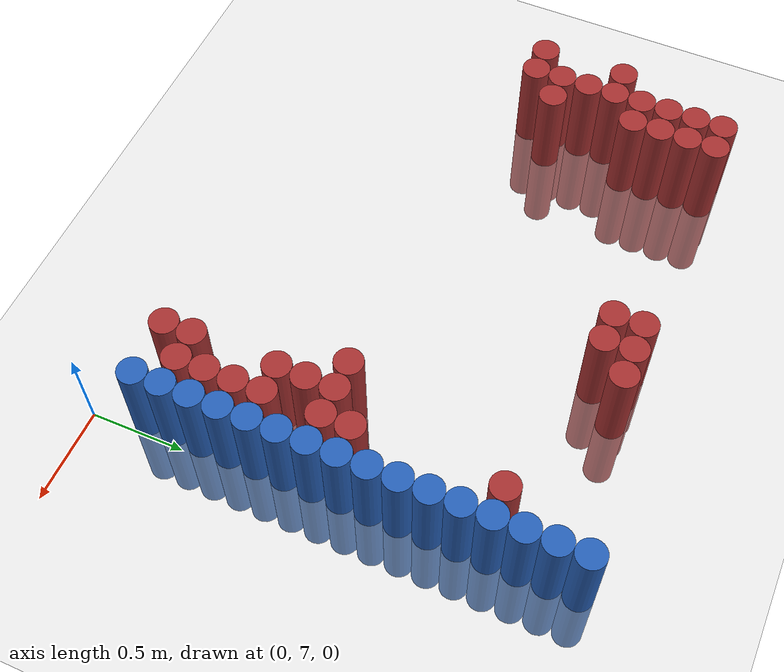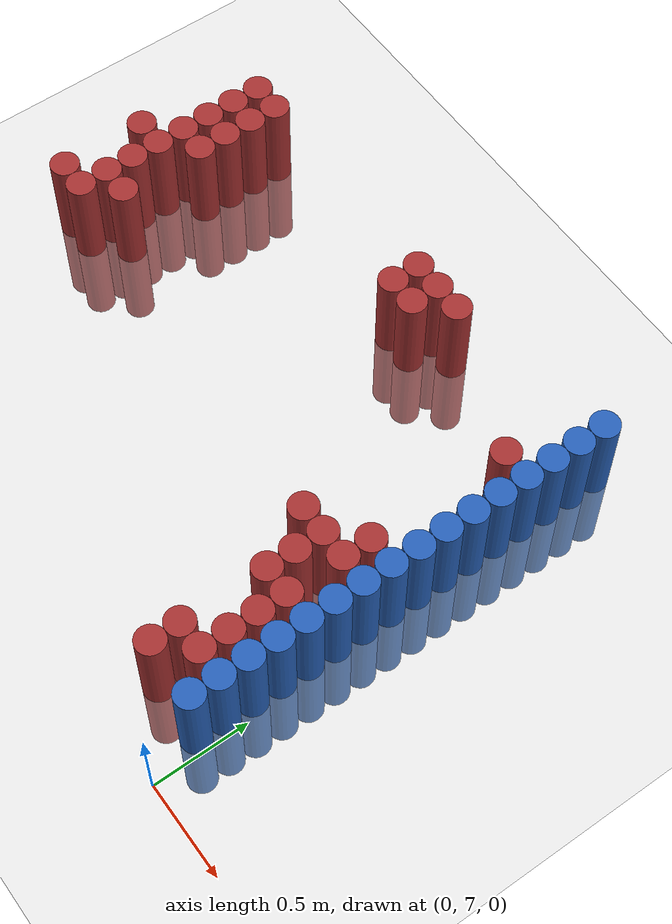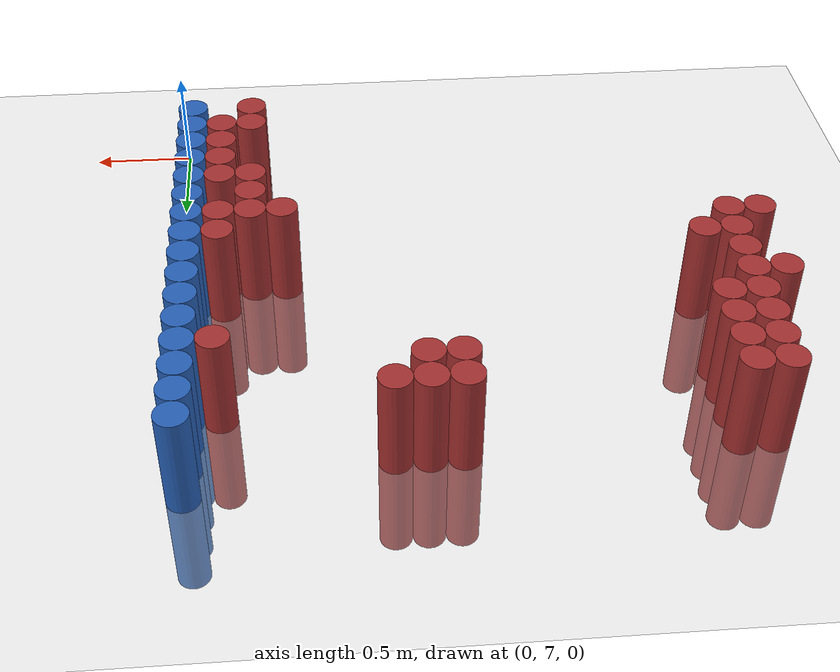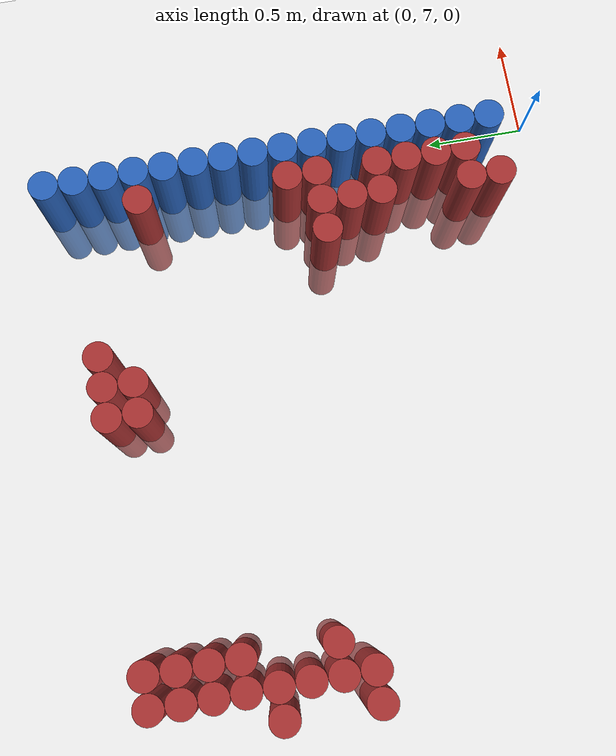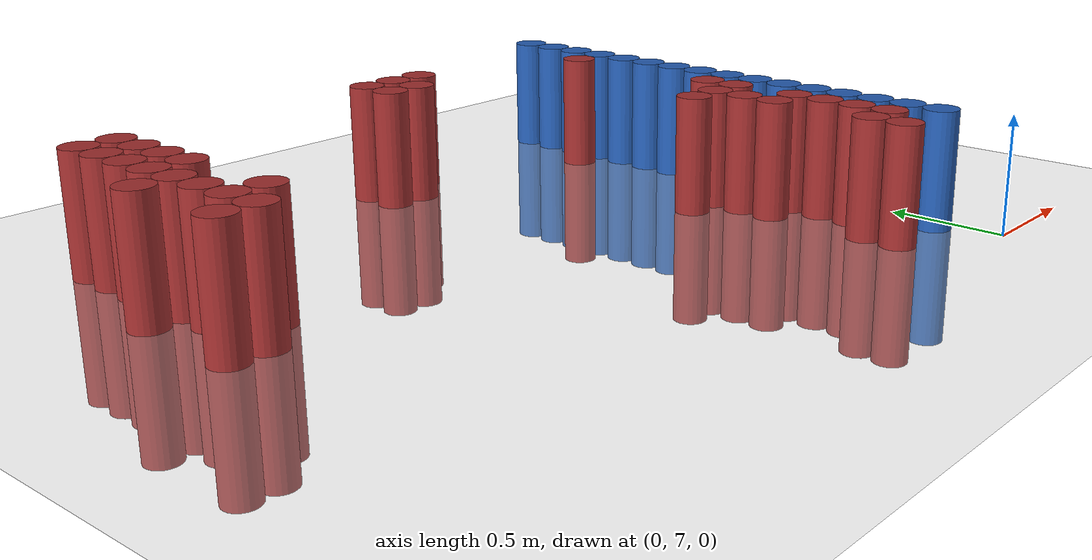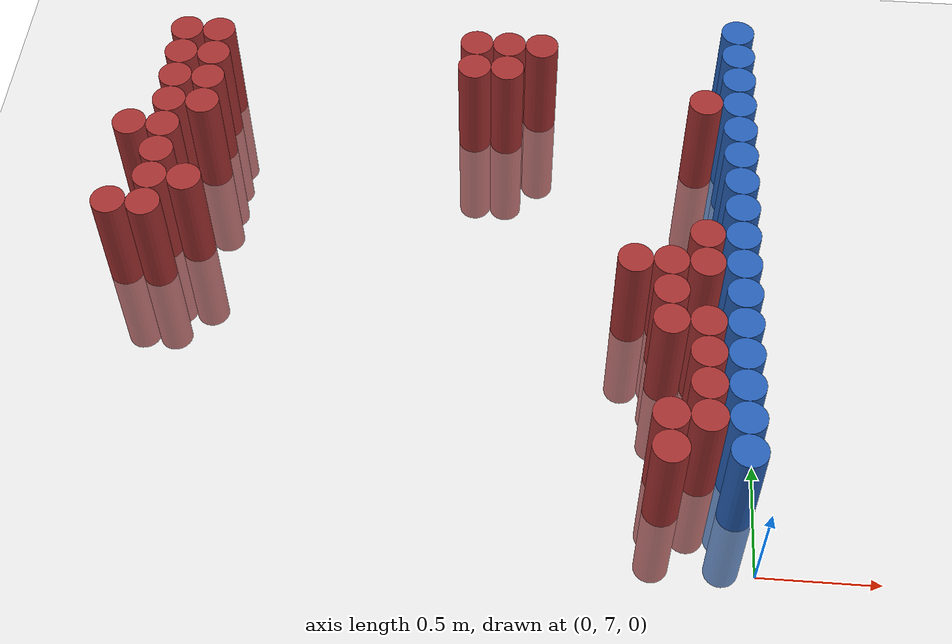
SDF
<sdf version="1.6">
 <world name="default">
  <model name="ground_plane">
   <static>1</static>
   <link name="link">
    <collision name="collision">
     <geometry><plane><normal>0 0 1</normal><size>100 100</size></plane></geometry>
     <surface><friction><ode><mu>100</mu><mu2>50</mu2></ode></friction></surface>
    </collision>
    <visual name="visual">
     <cast_shadows>0</cast_shadows>
     <geometry><plane><normal>0 0 1</normal><size>100 100</size></plane></geometry>
     <material>
      <script><uri>file://media/materials/scripts/gazebo.material</uri><name>Gazebo/Grey</name></script>
     </material>
    </visual>
   </link>
  </model>
  <model name="unit_cylinder_211">
   <static>1</static>
   <pose>-2.775000 8.325000 0.000000 0.000000 0.000000 0.000000</pose>
   <link name="link">
    <inertial>
     <mass>1</mass>
     <inertia><ixx>0.145833</ixx><ixy>0</ixy><ixz>0</ixz><iyy>0.145833</iyy><iyz>0</iyz><izz>0.125</izz></inertia>
    </inertial>
    <collision name="collision">
     <geometry><cylinder><radius>0.075000</radius><length>1</length></cylinder></geometry>
    </collision>
    <visual name="visual">
     <geometry><cylinder><radius>0.075000</radius><length>1</length></cylinder></geometry>
     <material>
      <ambient>0.648000 0.192000 0.192000 1</ambient>
      <diffuse>0.648000 0.192000 0.192000 1</diffuse>
     </material>
     <material>
      <script><name>Gazebo/Grey</name><uri>file://media/materials/scripts/gazebo.material</uri></script>
     </material>
    </visual>
   </link>
  </model>
  <model name="unit_cylinder_212">
   <static>1</static>
   <pose>-2.775000 8.775000 0.000000 0.000000 0.000000 0.000000</pose>
   <link name="link">
    <inertial>
     <mass>1</mass>
     <inertia><ixx>0.145833</ixx><ixy>0</ixy><ixz>0</ixz><iyy>0.145833</iyy><iyz>0</iyz><izz>0.125</izz></inertia>
    </inertial>
    <collision name="collision">
     <geometry><cylinder><radius>0.075000</radius><length>1</length></cylinder></geometry>
    </collision>
    <visual name="visual">
     <geometry><cylinder><radius>0.075000</radius><length>1</length></cylinder></geometry>
     <material>
      <ambient>0.648000 0.192000 0.192000 1</ambient>
      <diffuse>0.648000 0.192000 0.192000 1</diffuse>
     </material>
     <material>
      <script><name>Gazebo/Grey</name><uri>file://media/materials/scripts/gazebo.material</uri></script>
     </material>
    </visual>
   </link>
  </model>
  <model name="unit_cylinder_218">
   <static>1</static>
   <pose>-2.625000 8.325000 0.000000 0.000000 0.000000 0.000000</pose>
   <link name="link">
    <inertial>
     <mass>1</mass>
     <inertia><ixx>0.145833</ixx><ixy>0</ixy><ixz>0</ixz><iyy>0.145833</iyy><iyz>0</iyz><izz>0.125</izz></inertia>
    </inertial>
    <collision name="collision">
     <geometry><cylinder><radius>0.075000</radius><length>1</length></cylinder></geometry>
    </collision>
    <visual name="visual">
     <geometry><cylinder><radius>0.075000</radius><length>1</length></cylinder></geometry>
     <material>
      <ambient>0.648000 0.192000 0.192000 1</ambient>
      <diffuse>0.648000 0.192000 0.192000 1</diffuse>
     </material>
     <material>
      <script><name>Gazebo/Grey</name><uri>file://media/materials/scripts/gazebo.material</uri></script>
     </material>
    </visual>
   </link>
  </model>
  <model name="unit_cylinder_219">
   <static>1</static>
   <pose>-2.625000 8.475000 0.000000 0.000000 0.000000 0.000000</pose>
   <link name="link">
    <inertial>
     <mass>1</mass>
     <inertia><ixx>0.145833</ixx><ixy>0</ixy><ixz>0</ixz><iyy>0.145833</iyy><iyz>0</iyz><izz>0.125</izz></inertia>
    </inertial>
    <collision name="collision">
     <geometry><cylinder><radius>0.075000</radius><length>1</length></cylinder></geometry>
    </collision>
    <visual name="visual">
     <geometry><cylinder><radius>0.075000</radius><length>1</length></cylinder></geometry>
     <material>
      <ambient>0.648000 0.192000 0.192000 1</ambient>
      <diffuse>0.648000 0.192000 0.192000 1</diffuse>
     </material>
     <material>
      <script><name>Gazebo/Grey</name><uri>file://media/materials/scripts/gazebo.material</uri></script>
     </material>
    </visual>
   </link>
  </model>
  <model name="unit_cylinder_220">
   <static>1</static>
   <pose>-2.625000 8.625000 0.000000 0.000000 0.000000 0.000000</pose>
   <link name="link">
    <inertial>
     <mass>1</mass>
     <inertia><ixx>0.145833</ixx><ixy>0</ixy><ixz>0</ixz><iyy>0.145833</iyy><iyz>0</iyz><izz>0.125</izz></inertia>
    </inertial>
    <collision name="collision">
     <geometry><cylinder><radius>0.075000</radius><length>1</length></cylinder></geometry>
    </collision>
    <visual name="visual">
     <geometry><cylinder><radius>0.075000</radius><length>1</length></cylinder></geometry>
     <material>
      <ambient>0.648000 0.192000 0.192000 1</ambient>
      <diffuse>0.648000 0.192000 0.192000 1</diffuse>
     </material>
     <material>
      <script><name>Gazebo/Grey</name><uri>file://media/materials/scripts/gazebo.material</uri></script>
     </material>
    </visual>
   </link>
  </model>
  <model name="unit_cylinder_221">
   <static>1</static>
   <pose>-2.625000 8.775000 0.000000 0.000000 0.000000 0.000000</pose>
   <link name="link">
    <inertial>
     <mass>1</mass>
     <inertia><ixx>0.145833</ixx><ixy>0</ixy><ixz>0</ixz><iyy>0.145833</iyy><iyz>0</iyz><izz>0.125</izz></inertia>
    </inertial>
    <collision name="collision">
     <geometry><cylinder><radius>0.075000</radius><length>1</length></cylinder></geometry>
    </collision>
    <visual name="visual">
     <geometry><cylinder><radius>0.075000</radius><length>1</length></cylinder></geometry>
     <material>
      <ambient>0.648000 0.192000 0.192000 1</ambient>
      <diffuse>0.648000 0.192000 0.192000 1</diffuse>
     </material>
     <material>
      <script><name>Gazebo/Grey</name><uri>file://media/materials/scripts/gazebo.material</uri></script>
     </material>
    </visual>
   </link>
  </model>
  <model name="unit_cylinder_222">
   <static>1</static>
   <pose>-2.625000 8.925000 0.000000 0.000000 0.000000 0.000000</pose>
   <link name="link">
    <inertial>
     <mass>1</mass>
     <inertia><ixx>0.145833</ixx><ixy>0</ixy><ixz>0</ixz><iyy>0.145833</iyy><iyz>0</iyz><izz>0.125</izz></inertia>
    </inertial>
    <collision name="collision">
     <geometry><cylinder><radius>0.075000</radius><length>1</length></cylinder></geometry>
    </collision>
    <visual name="visual">
     <geometry><cylinder><radius>0.075000</radius><length>1</length></cylinder></geometry>
     <material>
      <ambient>0.648000 0.192000 0.192000 1</ambient>
      <diffuse>0.648000 0.192000 0.192000 1</diffuse>
     </material>
     <material>
      <script><name>Gazebo/Grey</name><uri>file://media/materials/scripts/gazebo.material</uri></script>
     </material>
    </visual>
   </link>
  </model>
  <model name="unit_cylinder_223">
   <static>1</static>
   <pose>-2.625000 9.075000 0.000000 0.000000 0.000000 0.000000</pose>
   <link name="link">
    <inertial>
     <mass>1</mass>
     <inertia><ixx>0.145833</ixx><ixy>0</ixy><ixz>0</ixz><iyy>0.145833</iyy><iyz>0</iyz><izz>0.125</izz></inertia>
    </inertial>
    <collision name="collision">
     <geometry><cylinder><radius>0.075000</radius><length>1</length></cylinder></geometry>
    </collision>
    <visual name="visual">
     <geometry><cylinder><radius>0.075000</radius><length>1</length></cylinder></geometry>
     <material>
      <ambient>0.648000 0.192000 0.192000 1</ambient>
      <diffuse>0.648000 0.192000 0.192000 1</diffuse>
     </material>
     <material>
      <script><name>Gazebo/Grey</name><uri>file://media/materials/scripts/gazebo.material</uri></script>
     </material>
    </visual>
   </link>
  </model>
  <model name="unit_cylinder_224">
   <static>1</static>
   <pose>-2.625000 9.225000 0.000000 0.000000 0.000000 0.000000</pose>
   <link name="link">
    <inertial>
     <mass>1</mass>
     <inertia><ixx>0.145833</ixx><ixy>0</ixy><ixz>0</ixz><iyy>0.145833</iyy><iyz>0</iyz><izz>0.125</izz></inertia>
    </inertial>
    <collision name="collision">
     <geometry><cylinder><radius>0.075000</radius><length>1</length></cylinder></geometry>
    </collision>
    <visual name="visual">
     <geometry><cylinder><radius>0.075000</radius><length>1</length></cylinder></geometry>
     <material>
      <ambient>0.648000 0.192000 0.192000 1</ambient>
      <diffuse>0.648000 0.192000 0.192000 1</diffuse>
     </material>
     <material>
      <script><name>Gazebo/Grey</name><uri>file://media/materials/scripts/gazebo.material</uri></script>
     </material>
    </visual>
   </link>
  </model>
  <model name="unit_cylinder_225">
   <static>1</static>
   <pose>-2.625000 9.375000 0.000000 0.000000 0.000000 0.000000</pose>
   <link name="link">
    <inertial>
     <mass>1</mass>
     <inertia><ixx>0.145833</ixx><ixy>0</ixy><ixz>0</ixz><iyy>0.145833</iyy><iyz>0</iyz><izz>0.125</izz></inertia>
    </inertial>
    <collision name="collision">
     <geometry><cylinder><radius>0.075000</radius><length>1</length></cylinder></geometry>
    </collision>
    <visual name="visual">
     <geometry><cylinder><radius>0.075000</radius><length>1</length></cylinder></geometry>
     <material>
      <ambient>0.648000 0.192000 0.192000 1</ambient>
      <diffuse>0.648000 0.192000 0.192000 1</diffuse>
     </material>
     <material>
      <script><name>Gazebo/Grey</name><uri>file://media/materials/scripts/gazebo.material</uri></script>
     </material>
    </visual>
   </link>
  </model>
  <model name="unit_cylinder_233">
   <static>1</static>
   <pose>-2.475000 8.475000 0.000000 0.000000 0.000000 0.000000</pose>
   <link name="link">
    <inertial>
     <mass>1</mass>
     <inertia><ixx>0.145833</ixx><ixy>0</ixy><ixz>0</ixz><iyy>0.145833</iyy><iyz>0</iyz><izz>0.125</izz></inertia>
    </inertial>
    <collision name="collision">
     <geometry><cylinder><radius>0.075000</radius><length>1</length></cylinder></geometry>
    </collision>
    <visual name="visual">
     <geometry><cylinder><radius>0.075000</radius><length>1</length></cylinder></geometry>
     <material>
      <ambient>0.648000 0.192000 0.192000 1</ambient>
      <diffuse>0.648000 0.192000 0.192000 1</diffuse>
     </material>
     <material>
      <script><name>Gazebo/Grey</name><uri>file://media/materials/scripts/gazebo.material</uri></script>
     </material>
    </visual>
   </link>
  </model>
  <model name="unit_cylinder_234">
   <static>1</static>
   <pose>-2.475000 8.925000 0.000000 0.000000 0.000000 0.000000</pose>
   <link name="link">
    <inertial>
     <mass>1</mass>
     <inertia><ixx>0.145833</ixx><ixy>0</ixy><ixz>0</ixz><iyy>0.145833</iyy><iyz>0</iyz><izz>0.125</izz></inertia>
    </inertial>
    <collision name="collision">
     <geometry><cylinder><radius>0.075000</radius><length>1</length></cylinder></geometry>
    </collision>
    <visual name="visual">
     <geometry><cylinder><radius>0.075000</radius><length>1</length></cylinder></geometry>
     <material>
      <ambient>0.648000 0.192000 0.192000 1</ambient>
      <diffuse>0.648000 0.192000 0.192000 1</diffuse>
     </material>
     <material>
      <script><name>Gazebo/Grey</name><uri>file://media/materials/scripts/gazebo.material</uri></script>
     </material>
    </visual>
   </link>
  </model>
  <model name="unit_cylinder_235">
   <static>1</static>
   <pose>-2.475000 9.075000 0.000000 0.000000 0.000000 0.000000</pose>
   <link name="link">
    <inertial>
     <mass>1</mass>
     <inertia><ixx>0.145833</ixx><ixy>0</ixy><ixz>0</ixz><iyy>0.145833</iyy><iyz>0</iyz><izz>0.125</izz></inertia>
    </inertial>
    <collision name="collision">
     <geometry><cylinder><radius>0.075000</radius><length>1</length></cylinder></geometry>
    </collision>
    <visual name="visual">
     <geometry><cylinder><radius>0.075000</radius><length>1</length></cylinder></geometry>
     <material>
      <ambient>0.648000 0.192000 0.192000 1</ambient>
      <diffuse>0.648000 0.192000 0.192000 1</diffuse>
     </material>
     <material>
      <script><name>Gazebo/Grey</name><uri>file://media/materials/scripts/gazebo.material</uri></script>
     </material>
    </visual>
   </link>
  </model>
  <model name="unit_cylinder_236">
   <static>1</static>
   <pose>-2.475000 9.225000 0.000000 0.000000 0.000000 0.000000</pose>
   <link name="link">
    <inertial>
     <mass>1</mass>
     <inertia><ixx>0.145833</ixx><ixy>0</ixy><ixz>0</ixz><iyy>0.145833</iyy><iyz>0</iyz><izz>0.125</izz></inertia>
    </inertial>
    <collision name="collision">
     <geometry><cylinder><radius>0.075000</radius><length>1</length></cylinder></geometry>
    </collision>
    <visual name="visual">
     <geometry><cylinder><radius>0.075000</radius><length>1</length></cylinder></geometry>
     <material>
      <ambient>0.648000 0.192000 0.192000 1</ambient>
      <diffuse>0.648000 0.192000 0.192000 1</diffuse>
     </material>
     <material>
      <script><name>Gazebo/Grey</name><uri>file://media/materials/scripts/gazebo.material</uri></script>
     </material>
    </visual>
   </link>
  </model>
  <model name="unit_cylinder_237">
   <static>1</static>
   <pose>-2.475000 9.375000 0.000000 0.000000 0.000000 0.000000</pose>
   <link name="link">
    <inertial>
     <mass>1</mass>
     <inertia><ixx>0.145833</ixx><ixy>0</ixy><ixz>0</ixz><iyy>0.145833</iyy><iyz>0</iyz><izz>0.125</izz></inertia>
    </inertial>
    <collision name="collision">
     <geometry><cylinder><radius>0.075000</radius><length>1</length></cylinder></geometry>
    </collision>
    <visual name="visual">
     <geometry><cylinder><radius>0.075000</radius><length>1</length></cylinder></geometry>
     <material>
      <ambient>0.648000 0.192000 0.192000 1</ambient>
      <diffuse>0.648000 0.192000 0.192000 1</diffuse>
     </material>
     <material>
      <script><name>Gazebo/Grey</name><uri>file://media/materials/scripts/gazebo.material</uri></script>
     </material>
    </visual>
   </link>
  </model>
  <model name="unit_cylinder_271">
   <static>1</static>
   <pose>-1.275000 9.225000 0.000000 0.000000 0.000000 0.000000</pose>
   <link name="link">
    <inertial>
     <mass>1</mass>
     <inertia><ixx>0.145833</ixx><ixy>0</ixy><ixz>0</ixz><iyy>0.145833</iyy><iyz>0</iyz><izz>0.125</izz></inertia>
    </inertial>
    <collision name="collision">
     <geometry><cylinder><radius>0.075000</radius><length>1</length></cylinder></geometry>
    </collision>
    <visual name="visual">
     <geometry><cylinder><radius>0.075000</radius><length>1</length></cylinder></geometry>
     <material>
      <ambient>0.648000 0.192000 0.192000 1</ambient>
      <diffuse>0.648000 0.192000 0.192000 1</diffuse>
     </material>
     <material>
      <script><name>Gazebo/Grey</name><uri>file://media/materials/scripts/gazebo.material</uri></script>
     </material>
    </visual>
   </link>
  </model>
  <model name="unit_cylinder_272">
   <static>1</static>
   <pose>-1.275000 9.375000 0.000000 0.000000 0.000000 0.000000</pose>
   <link name="link">
    <inertial>
     <mass>1</mass>
     <inertia><ixx>0.145833</ixx><ixy>0</ixy><ixz>0</ixz><iyy>0.145833</iyy><iyz>0</iyz><izz>0.125</izz></inertia>
    </inertial>
    <collision name="collision">
     <geometry><cylinder><radius>0.075000</radius><length>1</length></cylinder></geometry>
    </collision>
    <visual name="visual">
     <geometry><cylinder><radius>0.075000</radius><length>1</length></cylinder></geometry>
     <material>
      <ambient>0.648000 0.192000 0.192000 1</ambient>
      <diffuse>0.648000 0.192000 0.192000 1</diffuse>
     </material>
     <material>
      <script><name>Gazebo/Grey</name><uri>file://media/materials/scripts/gazebo.material</uri></script>
     </material>
    </visual>
   </link>
  </model>
  <model name="unit_cylinder_273">
   <static>1</static>
   <pose>-1.125000 9.225000 0.000000 0.000000 0.000000 0.000000</pose>
   <link name="link">
    <inertial>
     <mass>1</mass>
     <inertia><ixx>0.145833</ixx><ixy>0</ixy><ixz>0</ixz><iyy>0.145833</iyy><iyz>0</iyz><izz>0.125</izz></inertia>
    </inertial>
    <collision name="collision">
     <geometry><cylinder><radius>0.075000</radius><length>1</length></cylinder></geometry>
    </collision>
    <visual name="visual">
     <geometry><cylinder><radius>0.075000</radius><length>1</length></cylinder></geometry>
     <material>
      <ambient>0.648000 0.192000 0.192000 1</ambient>
      <diffuse>0.648000 0.192000 0.192000 1</diffuse>
     </material>
     <material>
      <script><name>Gazebo/Grey</name><uri>file://media/materials/scripts/gazebo.material</uri></script>
     </material>
    </visual>
   </link>
  </model>
  <model name="unit_cylinder_274">
   <static>1</static>
   <pose>-1.125000 9.375000 0.000000 0.000000 0.000000 0.000000</pose>
   <link name="link">
    <inertial>
     <mass>1</mass>
     <inertia><ixx>0.145833</ixx><ixy>0</ixy><ixz>0</ixz><iyy>0.145833</iyy><iyz>0</iyz><izz>0.125</izz></inertia>
    </inertial>
    <collision name="collision">
     <geometry><cylinder><radius>0.075000</radius><length>1</length></cylinder></geometry>
    </collision>
    <visual name="visual">
     <geometry><cylinder><radius>0.075000</radius><length>1</length></cylinder></geometry>
     <material>
      <ambient>0.648000 0.192000 0.192000 1</ambient>
      <diffuse>0.648000 0.192000 0.192000 1</diffuse>
     </material>
     <material>
      <script><name>Gazebo/Grey</name><uri>file://media/materials/scripts/gazebo.material</uri></script>
     </material>
    </visual>
   </link>
  </model>
  <model name="unit_cylinder_275">
   <static>1</static>
   <pose>-0.975000 9.375000 0.000000 0.000000 0.000000 0.000000</pose>
   <link name="link">
    <inertial>
     <mass>1</mass>
     <inertia><ixx>0.145833</ixx><ixy>0</ixy><ixz>0</ixz><iyy>0.145833</iyy><iyz>0</iyz><izz>0.125</izz></inertia>
    </inertial>
    <collision name="collision">
     <geometry><cylinder><radius>0.075000</radius><length>1</length></cylinder></geometry>
    </collision>
    <visual name="visual">
     <geometry><cylinder><radius>0.075000</radius><length>1</length></cylinder></geometry>
     <material>
      <ambient>0.648000 0.192000 0.192000 1</ambient>
      <diffuse>0.648000 0.192000 0.192000 1</diffuse>
     </material>
     <material>
      <script><name>Gazebo/Grey</name><uri>file://media/materials/scripts/gazebo.material</uri></script>
     </material>
    </visual>
   </link>
  </model>
  <model name="unit_cylinder_283">
   <static>1</static>
   <pose>-0.525000 8.175000 0.000000 0.000000 0.000000 0.000000</pose>
   <link name="link">
    <inertial>
     <mass>1</mass>
     <inertia><ixx>0.145833</ixx><ixy>0</ixy><ixz>0</ixz><iyy>0.145833</iyy><iyz>0</iyz><izz>0.125</izz></inertia>
    </inertial>
    <collision name="collision">
     <geometry><cylinder><radius>0.075000</radius><length>1</length></cylinder></geometry>
    </collision>
    <visual name="visual">
     <geometry><cylinder><radius>0.075000</radius><length>1</length></cylinder></geometry>
     <material>
      <ambient>0.648000 0.192000 0.192000 1</ambient>
      <diffuse>0.648000 0.192000 0.192000 1</diffuse>
     </material>
     <material>
      <script><name>Gazebo/Grey</name><uri>file://media/materials/scripts/gazebo.material</uri></script>
     </material>
    </visual>
   </link>
  </model>
  <model name="unit_cylinder_288">
   <static>1</static>
   <pose>-0.375000 7.275000 0.000000 0.000000 0.000000 0.000000</pose>
   <link name="link">
    <inertial>
     <mass>1</mass>
     <inertia><ixx>0.145833</ixx><ixy>0</ixy><ixz>0</ixz><iyy>0.145833</iyy><iyz>0</iyz><izz>0.125</izz></inertia>
    </inertial>
    <collision name="collision">
     <geometry><cylinder><radius>0.075000</radius><length>1</length></cylinder></geometry>
    </collision>
    <visual name="visual">
     <geometry><cylinder><radius>0.075000</radius><length>1</length></cylinder></geometry>
     <material>
      <ambient>0.648000 0.192000 0.192000 1</ambient>
      <diffuse>0.648000 0.192000 0.192000 1</diffuse>
     </material>
     <material>
      <script><name>Gazebo/Grey</name><uri>file://media/materials/scripts/gazebo.material</uri></script>
     </material>
    </visual>
   </link>
  </model>
  <model name="unit_cylinder_289">
   <static>1</static>
   <pose>-0.375000 7.425000 0.000000 0.000000 0.000000 0.000000</pose>
   <link name="link">
    <inertial>
     <mass>1</mass>
     <inertia><ixx>0.145833</ixx><ixy>0</ixy><ixz>0</ixz><iyy>0.145833</iyy><iyz>0</iyz><izz>0.125</izz></inertia>
    </inertial>
    <collision name="collision">
     <geometry><cylinder><radius>0.075000</radius><length>1</length></cylinder></geometry>
    </collision>
    <visual name="visual">
     <geometry><cylinder><radius>0.075000</radius><length>1</length></cylinder></geometry>
     <material>
      <ambient>0.648000 0.192000 0.192000 1</ambient>
      <diffuse>0.648000 0.192000 0.192000 1</diffuse>
     </material>
     <material>
      <script><name>Gazebo/Grey</name><uri>file://media/materials/scripts/gazebo.material</uri></script>
     </material>
    </visual>
   </link>
  </model>
  <model name="unit_cylinder_290">
   <static>1</static>
   <pose>-0.375000 7.875000 0.000000 0.000000 0.000000 0.000000</pose>
   <link name="link">
    <inertial>
     <mass>1</mass>
     <inertia><ixx>0.145833</ixx><ixy>0</ixy><ixz>0</ixz><iyy>0.145833</iyy><iyz>0</iyz><izz>0.125</izz></inertia>
    </inertial>
    <collision name="collision">
     <geometry><cylinder><radius>0.075000</radius><length>1</length></cylinder></geometry>
    </collision>
    <visual name="visual">
     <geometry><cylinder><radius>0.075000</radius><length>1</length></cylinder></geometry>
     <material>
      <ambient>0.648000 0.192000 0.192000 1</ambient>
      <diffuse>0.648000 0.192000 0.192000 1</diffuse>
     </material>
     <material>
      <script><name>Gazebo/Grey</name><uri>file://media/materials/scripts/gazebo.material</uri></script>
     </material>
    </visual>
   </link>
  </model>
  <model name="unit_cylinder_291">
   <static>1</static>
   <pose>-0.375000 8.025000 0.000000 0.000000 0.000000 0.000000</pose>
   <link name="link">
    <inertial>
     <mass>1</mass>
     <inertia><ixx>0.145833</ixx><ixy>0</ixy><ixz>0</ixz><iyy>0.145833</iyy><iyz>0</iyz><izz>0.125</izz></inertia>
    </inertial>
    <collision name="collision">
     <geometry><cylinder><radius>0.075000</radius><length>1</length></cylinder></geometry>
    </collision>
    <visual name="visual">
     <geometry><cylinder><radius>0.075000</radius><length>1</length></cylinder></geometry>
     <material>
      <ambient>0.648000 0.192000 0.192000 1</ambient>
      <diffuse>0.648000 0.192000 0.192000 1</diffuse>
     </material>
     <material>
      <script><name>Gazebo/Grey</name><uri>file://media/materials/scripts/gazebo.material</uri></script>
     </material>
    </visual>
   </link>
  </model>
  <model name="unit_cylinder_292">
   <static>1</static>
   <pose>-0.375000 8.175000 0.000000 0.000000 0.000000 0.000000</pose>
   <link name="link">
    <inertial>
     <mass>1</mass>
     <inertia><ixx>0.145833</ixx><ixy>0</ixy><ixz>0</ixz><iyy>0.145833</iyy><iyz>0</iyz><izz>0.125</izz></inertia>
    </inertial>
    <collision name="collision">
     <geometry><cylinder><radius>0.075000</radius><length>1</length></cylinder></geometry>
    </collision>
    <visual name="visual">
     <geometry><cylinder><radius>0.075000</radius><length>1</length></cylinder></geometry>
     <material>
      <ambient>0.648000 0.192000 0.192000 1</ambient>
      <diffuse>0.648000 0.192000 0.192000 1</diffuse>
     </material>
     <material>
      <script><name>Gazebo/Grey</name><uri>file://media/materials/scripts/gazebo.material</uri></script>
     </material>
    </visual>
   </link>
  </model>
  <model name="unit_cylinder_301">
   <static>1</static>
   <pose>-0.225000 7.425000 0.000000 0.000000 0.000000 0.000000</pose>
   <link name="link">
    <inertial>
     <mass>1</mass>
     <inertia><ixx>0.145833</ixx><ixy>0</ixy><ixz>0</ixz><iyy>0.145833</iyy><iyz>0</iyz><izz>0.125</izz></inertia>
    </inertial>
    <collision name="collision">
     <geometry><cylinder><radius>0.075000</radius><length>1</length></cylinder></geometry>
    </collision>
    <visual name="visual">
     <geometry><cylinder><radius>0.075000</radius><length>1</length></cylinder></geometry>
     <material>
      <ambient>0.648000 0.192000 0.192000 1</ambient>
      <diffuse>0.648000 0.192000 0.192000 1</diffuse>
     </material>
     <material>
      <script><name>Gazebo/Grey</name><uri>file://media/materials/scripts/gazebo.material</uri></script>
     </material>
    </visual>
   </link>
  </model>
  <model name="unit_cylinder_302">
   <static>1</static>
   <pose>-0.225000 7.575000 0.000000 0.000000 0.000000 0.000000</pose>
   <link name="link">
    <inertial>
     <mass>1</mass>
     <inertia><ixx>0.145833</ixx><ixy>0</ixy><ixz>0</ixz><iyy>0.145833</iyy><iyz>0</iyz><izz>0.125</izz></inertia>
    </inertial>
    <collision name="collision">
     <geometry><cylinder><radius>0.075000</radius><length>1</length></cylinder></geometry>
    </collision>
    <visual name="visual">
     <geometry><cylinder><radius>0.075000</radius><length>1</length></cylinder></geometry>
     <material>
      <ambient>0.648000 0.192000 0.192000 1</ambient>
      <diffuse>0.648000 0.192000 0.192000 1</diffuse>
     </material>
     <material>
      <script><name>Gazebo/Grey</name><uri>file://media/materials/scripts/gazebo.material</uri></script>
     </material>
    </visual>
   </link>
  </model>
  <model name="unit_cylinder_303">
   <static>1</static>
   <pose>-0.225000 7.725000 0.000000 0.000000 0.000000 0.000000</pose>
   <link name="link">
    <inertial>
     <mass>1</mass>
     <inertia><ixx>0.145833</ixx><ixy>0</ixy><ixz>0</ixz><iyy>0.145833</iyy><iyz>0</iyz><izz>0.125</izz></inertia>
    </inertial>
    <collision name="collision">
     <geometry><cylinder><radius>0.075000</radius><length>1</length></cylinder></geometry>
    </collision>
    <visual name="visual">
     <geometry><cylinder><radius>0.075000</radius><length>1</length></cylinder></geometry>
     <material>
      <ambient>0.648000 0.192000 0.192000 1</ambient>
      <diffuse>0.648000 0.192000 0.192000 1</diffuse>
     </material>
     <material>
      <script><name>Gazebo/Grey</name><uri>file://media/materials/scripts/gazebo.material</uri></script>
     </material>
    </visual>
   </link>
  </model>
  <model name="unit_cylinder_304">
   <static>1</static>
   <pose>-0.225000 7.875000 0.000000 0.000000 0.000000 0.000000</pose>
   <link name="link">
    <inertial>
     <mass>1</mass>
     <inertia><ixx>0.145833</ixx><ixy>0</ixy><ixz>0</ixz><iyy>0.145833</iyy><iyz>0</iyz><izz>0.125</izz></inertia>
    </inertial>
    <collision name="collision">
     <geometry><cylinder><radius>0.075000</radius><length>1</length></cylinder></geometry>
    </collision>
    <visual name="visual">
     <geometry><cylinder><radius>0.075000</radius><length>1</length></cylinder></geometry>
     <material>
      <ambient>0.648000 0.192000 0.192000 1</ambient>
      <diffuse>0.648000 0.192000 0.192000 1</diffuse>
     </material>
     <material>
      <script><name>Gazebo/Grey</name><uri>file://media/materials/scripts/gazebo.material</uri></script>
     </material>
    </visual>
   </link>
  </model>
  <model name="unit_cylinder_305">
   <static>1</static>
   <pose>-0.225000 8.175000 0.000000 0.000000 0.000000 0.000000</pose>
   <link name="link">
    <inertial>
     <mass>1</mass>
     <inertia><ixx>0.145833</ixx><ixy>0</ixy><ixz>0</ixz><iyy>0.145833</iyy><iyz>0</iyz><izz>0.125</izz></inertia>
    </inertial>
    <collision name="collision">
     <geometry><cylinder><radius>0.075000</radius><length>1</length></cylinder></geometry>
    </collision>
    <visual name="visual">
     <geometry><cylinder><radius>0.075000</radius><length>1</length></cylinder></geometry>
     <material>
      <ambient>0.648000 0.192000 0.192000 1</ambient>
      <diffuse>0.648000 0.192000 0.192000 1</diffuse>
     </material>
     <material>
      <script><name>Gazebo/Grey</name><uri>file://media/materials/scripts/gazebo.material</uri></script>
     </material>
    </visual>
   </link>
  </model>
  <model name="unit_cylinder_306">
   <static>1</static>
   <pose>-0.225000 8.325000 0.000000 0.000000 0.000000 0.000000</pose>
   <link name="link">
    <inertial>
     <mass>1</mass>
     <inertia><ixx>0.145833</ixx><ixy>0</ixy><ixz>0</ixz><iyy>0.145833</iyy><iyz>0</iyz><izz>0.125</izz></inertia>
    </inertial>
    <collision name="collision">
     <geometry><cylinder><radius>0.075000</radius><length>1</length></cylinder></geometry>
    </collision>
    <visual name="visual">
     <geometry><cylinder><radius>0.075000</radius><length>1</length></cylinder></geometry>
     <material>
      <ambient>0.648000 0.192000 0.192000 1</ambient>
      <diffuse>0.648000 0.192000 0.192000 1</diffuse>
     </material>
     <material>
      <script><name>Gazebo/Grey</name><uri>file://media/materials/scripts/gazebo.material</uri></script>
     </material>
    </visual>
   </link>
  </model>
  <model name="unit_cylinder_307">
   <static>1</static>
   <pose>-0.225000 9.075000 0.000000 0.000000 0.000000 0.000000</pose>
   <link name="link">
    <inertial>
     <mass>1</mass>
     <inertia><ixx>0.145833</ixx><ixy>0</ixy><ixz>0</ixz><iyy>0.145833</iyy><iyz>0</iyz><izz>0.125</izz></inertia>
    </inertial>
    <collision name="collision">
     <geometry><cylinder><radius>0.075000</radius><length>1</length></cylinder></geometry>
    </collision>
    <visual name="visual">
     <geometry><cylinder><radius>0.075000</radius><length>1</length></cylinder></geometry>
     <material>
      <ambient>0.648000 0.192000 0.192000 1</ambient>
      <diffuse>0.648000 0.192000 0.192000 1</diffuse>
     </material>
     <material>
      <script><name>Gazebo/Grey</name><uri>file://media/materials/scripts/gazebo.material</uri></script>
     </material>
    </visual>
   </link>
  </model>
  <model name="unit_cylinder_322">
   <static>1</static>
   <pose>-0.075000 7.275000 0.000000 0.000000 0.000000 0.000000</pose>
   <link name="link">
    <inertial>
     <mass>1</mass>
     <inertia><ixx>0.145833</ixx><ixy>0</ixy><ixz>0</ixz><iyy>0.145833</iyy><iyz>0</iyz><izz>0.125</izz></inertia>
    </inertial>
    <collision name="collision">
     <geometry><cylinder><radius>0.075000</radius><length>1</length></cylinder></geometry>
    </collision>
    <visual name="visual">
     <geometry><cylinder><radius>0.075000</radius><length>1</length></cylinder></geometry>
     <material>
      <ambient>0.152000 0.379000 0.720000 1</ambient>
      <diffuse>0.152000 0.379000 0.720000 1</diffuse>
     </material>
     <material>
      <script><name>Gazebo/Grey</name><uri>file://media/materials/scripts/gazebo.material</uri></script>
     </material>
    </visual>
   </link>
  </model>
  <model name="unit_cylinder_323">
   <static>1</static>
   <pose>-0.075000 7.425000 0.000000 0.000000 0.000000 0.000000</pose>
   <link name="link">
    <inertial>
     <mass>1</mass>
     <inertia><ixx>0.145833</ixx><ixy>0</ixy><ixz>0</ixz><iyy>0.145833</iyy><iyz>0</iyz><izz>0.125</izz></inertia>
    </inertial>
    <collision name="collision">
     <geometry><cylinder><radius>0.075000</radius><length>1</length></cylinder></geometry>
    </collision>
    <visual name="visual">
     <geometry><cylinder><radius>0.075000</radius><length>1</length></cylinder></geometry>
     <material>
      <ambient>0.152000 0.379000 0.720000 1</ambient>
      <diffuse>0.152000 0.379000 0.720000 1</diffuse>
     </material>
     <material>
      <script><name>Gazebo/Grey</name><uri>file://media/materials/scripts/gazebo.material</uri></script>
     </material>
    </visual>
   </link>
  </model>
  <model name="unit_cylinder_324">
   <static>1</static>
   <pose>-0.075000 7.575000 0.000000 0.000000 0.000000 0.000000</pose>
   <link name="link">
    <inertial>
     <mass>1</mass>
     <inertia><ixx>0.145833</ixx><ixy>0</ixy><ixz>0</ixz><iyy>0.145833</iyy><iyz>0</iyz><izz>0.125</izz></inertia>
    </inertial>
    <collision name="collision">
     <geometry><cylinder><radius>0.075000</radius><length>1</length></cylinder></geometry>
    </collision>
    <visual name="visual">
     <geometry><cylinder><radius>0.075000</radius><length>1</length></cylinder></geometry>
     <material>
      <ambient>0.152000 0.379000 0.720000 1</ambient>
      <diffuse>0.152000 0.379000 0.720000 1</diffuse>
     </material>
     <material>
      <script><name>Gazebo/Grey</name><uri>file://media/materials/scripts/gazebo.material</uri></script>
     </material>
    </visual>
   </link>
  </model>
  <model name="unit_cylinder_325">
   <static>1</static>
   <pose>-0.075000 7.725000 0.000000 0.000000 0.000000 0.000000</pose>
   <link name="link">
    <inertial>
     <mass>1</mass>
     <inertia><ixx>0.145833</ixx><ixy>0</ixy><ixz>0</ixz><iyy>0.145833</iyy><iyz>0</iyz><izz>0.125</izz></inertia>
    </inertial>
    <collision name="collision">
     <geometry><cylinder><radius>0.075000</radius><length>1</length></cylinder></geometry>
    </collision>
    <visual name="visual">
     <geometry><cylinder><radius>0.075000</radius><length>1</length></cylinder></geometry>
     <material>
      <ambient>0.152000 0.379000 0.720000 1</ambient>
      <diffuse>0.152000 0.379000 0.720000 1</diffuse>
     </material>
     <material>
      <script><name>Gazebo/Grey</name><uri>file://media/materials/scripts/gazebo.material</uri></script>
     </material>
    </visual>
   </link>
  </model>
  <model name="unit_cylinder_326">
   <static>1</static>
   <pose>-0.075000 7.875000 0.000000 0.000000 0.000000 0.000000</pose>
   <link name="link">
    <inertial>
     <mass>1</mass>
     <inertia><ixx>0.145833</ixx><ixy>0</ixy><ixz>0</ixz><iyy>0.145833</iyy><iyz>0</iyz><izz>0.125</izz></inertia>
    </inertial>
    <collision name="collision">
     <geometry><cylinder><radius>0.075000</radius><length>1</length></cylinder></geometry>
    </collision>
    <visual name="visual">
     <geometry><cylinder><radius>0.075000</radius><length>1</length></cylinder></geometry>
     <material>
      <ambient>0.152000 0.379000 0.720000 1</ambient>
      <diffuse>0.152000 0.379000 0.720000 1</diffuse>
     </material>
     <material>
      <script><name>Gazebo/Grey</name><uri>file://media/materials/scripts/gazebo.material</uri></script>
     </material>
    </visual>
   </link>
  </model>
  <model name="unit_cylinder_327">
   <static>1</static>
   <pose>-0.075000 8.025000 0.000000 0.000000 0.000000 0.000000</pose>
   <link name="link">
    <inertial>
     <mass>1</mass>
     <inertia><ixx>0.145833</ixx><ixy>0</ixy><ixz>0</ixz><iyy>0.145833</iyy><iyz>0</iyz><izz>0.125</izz></inertia>
    </inertial>
    <collision name="collision">
     <geometry><cylinder><radius>0.075000</radius><length>1</length></cylinder></geometry>
    </collision>
    <visual name="visual">
     <geometry><cylinder><radius>0.075000</radius><length>1</length></cylinder></geometry>
     <material>
      <ambient>0.152000 0.379000 0.720000 1</ambient>
      <diffuse>0.152000 0.379000 0.720000 1</diffuse>
     </material>
     <material>
      <script><name>Gazebo/Grey</name><uri>file://media/materials/scripts/gazebo.material</uri></script>
     </material>
    </visual>
   </link>
  </model>
  <model name="unit_cylinder_328">
   <static>1</static>
   <pose>-0.075000 8.175000 0.000000 0.000000 0.000000 0.000000</pose>
   <link name="link">
    <inertial>
     <mass>1</mass>
     <inertia><ixx>0.145833</ixx><ixy>0</ixy><ixz>0</ixz><iyy>0.145833</iyy><iyz>0</iyz><izz>0.125</izz></inertia>
    </inertial>
    <collision name="collision">
     <geometry><cylinder><radius>0.075000</radius><length>1</length></cylinder></geometry>
    </collision>
    <visual name="visual">
     <geometry><cylinder><radius>0.075000</radius><length>1</length></cylinder></geometry>
     <material>
      <ambient>0.152000 0.379000 0.720000 1</ambient>
      <diffuse>0.152000 0.379000 0.720000 1</diffuse>
     </material>
     <material>
      <script><name>Gazebo/Grey</name><uri>file://media/materials/scripts/gazebo.material</uri></script>
     </material>
    </visual>
   </link>
  </model>
  <model name="unit_cylinder_329">
   <static>1</static>
   <pose>-0.075000 8.325000 0.000000 0.000000 0.000000 0.000000</pose>
   <link name="link">
    <inertial>
     <mass>1</mass>
     <inertia><ixx>0.145833</ixx><ixy>0</ixy><ixz>0</ixz><iyy>0.145833</iyy><iyz>0</iyz><izz>0.125</izz></inertia>
    </inertial>
    <collision name="collision">
     <geometry><cylinder><radius>0.075000</radius><length>1</length></cylinder></geometry>
    </collision>
    <visual name="visual">
     <geometry><cylinder><radius>0.075000</radius><length>1</length></cylinder></geometry>
     <material>
      <ambient>0.152000 0.379000 0.720000 1</ambient>
      <diffuse>0.152000 0.379000 0.720000 1</diffuse>
     </material>
     <material>
      <script><name>Gazebo/Grey</name><uri>file://media/materials/scripts/gazebo.material</uri></script>
     </material>
    </visual>
   </link>
  </model>
  <model name="unit_cylinder_330">
   <static>1</static>
   <pose>-0.075000 8.475000 0.000000 0.000000 0.000000 0.000000</pose>
   <link name="link">
    <inertial>
     <mass>1</mass>
     <inertia><ixx>0.145833</ixx><ixy>0</ixy><ixz>0</ixz><iyy>0.145833</iyy><iyz>0</iyz><izz>0.125</izz></inertia>
    </inertial>
    <collision name="collision">
     <geometry><cylinder><radius>0.075000</radius><length>1</length></cylinder></geometry>
    </collision>
    <visual name="visual">
     <geometry><cylinder><radius>0.075000</radius><length>1</length></cylinder></geometry>
     <material>
      <ambient>0.152000 0.379000 0.720000 1</ambient>
      <diffuse>0.152000 0.379000 0.720000 1</diffuse>
     </material>
     <material>
      <script><name>Gazebo/Grey</name><uri>file://media/materials/scripts/gazebo.material</uri></script>
     </material>
    </visual>
   </link>
  </model>
  <model name="unit_cylinder_331">
   <static>1</static>
   <pose>-0.075000 8.625000 0.000000 0.000000 0.000000 0.000000</pose>
   <link name="link">
    <inertial>
     <mass>1</mass>
     <inertia><ixx>0.145833</ixx><ixy>0</ixy><ixz>0</ixz><iyy>0.145833</iyy><iyz>0</iyz><izz>0.125</izz></inertia>
    </inertial>
    <collision name="collision">
     <geometry><cylinder><radius>0.075000</radius><length>1</length></cylinder></geometry>
    </collision>
    <visual name="visual">
     <geometry><cylinder><radius>0.075000</radius><length>1</length></cylinder></geometry>
     <material>
      <ambient>0.152000 0.379000 0.720000 1</ambient>
      <diffuse>0.152000 0.379000 0.720000 1</diffuse>
     </material>
     <material>
      <script><name>Gazebo/Grey</name><uri>file://media/materials/scripts/gazebo.material</uri></script>
     </material>
    </visual>
   </link>
  </model>
  <model name="unit_cylinder_332">
   <static>1</static>
   <pose>-0.075000 8.775000 0.000000 0.000000 0.000000 0.000000</pose>
   <link name="link">
    <inertial>
     <mass>1</mass>
     <inertia><ixx>0.145833</ixx><ixy>0</ixy><ixz>0</ixz><iyy>0.145833</iyy><iyz>0</iyz><izz>0.125</izz></inertia>
    </inertial>
    <collision name="collision">
     <geometry><cylinder><radius>0.075000</radius><length>1</length></cylinder></geometry>
    </collision>
    <visual name="visual">
     <geometry><cylinder><radius>0.075000</radius><length>1</length></cylinder></geometry>
     <material>
      <ambient>0.152000 0.379000 0.720000 1</ambient>
      <diffuse>0.152000 0.379000 0.720000 1</diffuse>
     </material>
     <material>
      <script><name>Gazebo/Grey</name><uri>file://media/materials/scripts/gazebo.material</uri></script>
     </material>
    </visual>
   </link>
  </model>
  <model name="unit_cylinder_333">
   <static>1</static>
   <pose>-0.075000 8.925000 0.000000 0.000000 0.000000 0.000000</pose>
   <link name="link">
    <inertial>
     <mass>1</mass>
     <inertia><ixx>0.145833</ixx><ixy>0</ixy><ixz>0</ixz><iyy>0.145833</iyy><iyz>0</iyz><izz>0.125</izz></inertia>
    </inertial>
    <collision name="collision">
     <geometry><cylinder><radius>0.075000</radius><length>1</length></cylinder></geometry>
    </collision>
    <visual name="visual">
     <geometry><cylinder><radius>0.075000</radius><length>1</length></cylinder></geometry>
     <material>
      <ambient>0.152000 0.379000 0.720000 1</ambient>
      <diffuse>0.152000 0.379000 0.720000 1</diffuse>
     </material>
     <material>
      <script><name>Gazebo/Grey</name><uri>file://media/materials/scripts/gazebo.material</uri></script>
     </material>
    </visual>
   </link>
  </model>
  <model name="unit_cylinder_334">
   <static>1</static>
   <pose>-0.075000 9.075000 0.000000 0.000000 0.000000 0.000000</pose>
   <link name="link">
    <inertial>
     <mass>1</mass>
     <inertia><ixx>0.145833</ixx><ixy>0</ixy><ixz>0</ixz><iyy>0.145833</iyy><iyz>0</iyz><izz>0.125</izz></inertia>
    </inertial>
    <collision name="collision">
     <geometry><cylinder><radius>0.075000</radius><length>1</length></cylinder></geometry>
    </collision>
    <visual name="visual">
     <geometry><cylinder><radius>0.075000</radius><length>1</length></cylinder></geometry>
     <material>
      <ambient>0.152000 0.379000 0.720000 1</ambient>
      <diffuse>0.152000 0.379000 0.720000 1</diffuse>
     </material>
     <material>
      <script><name>Gazebo/Grey</name><uri>file://media/materials/scripts/gazebo.material</uri></script>
     </material>
    </visual>
   </link>
  </model>
  <model name="unit_cylinder_335">
   <static>1</static>
   <pose>-0.075000 9.225000 0.000000 0.000000 0.000000 0.000000</pose>
   <link name="link">
    <inertial>
     <mass>1</mass>
     <inertia><ixx>0.145833</ixx><ixy>0</ixy><ixz>0</ixz><iyy>0.145833</iyy><iyz>0</iyz><izz>0.125</izz></inertia>
    </inertial>
    <collision name="collision">
     <geometry><cylinder><radius>0.075000</radius><length>1</length></cylinder></geometry>
    </collision>
    <visual name="visual">
     <geometry><cylinder><radius>0.075000</radius><length>1</length></cylinder></geometry>
     <material>
      <ambient>0.152000 0.379000 0.720000 1</ambient>
      <diffuse>0.152000 0.379000 0.720000 1</diffuse>
     </material>
     <material>
      <script><name>Gazebo/Grey</name><uri>file://media/materials/scripts/gazebo.material</uri></script>
     </material>
    </visual>
   </link>
  </model>
  <model name="unit_cylinder_336">
   <static>1</static>
   <pose>-0.075000 9.375000 0.000000 0.000000 0.000000 0.000000</pose>
   <link name="link">
    <inertial>
     <mass>1</mass>
     <inertia><ixx>0.145833</ixx><ixy>0</ixy><ixz>0</ixz><iyy>0.145833</iyy><iyz>0</iyz><izz>0.125</izz></inertia>
    </inertial>
    <collision name="collision">
     <geometry><cylinder><radius>0.075000</radius><length>1</length></cylinder></geometry>
    </collision>
    <visual name="visual">
     <geometry><cylinder><radius>0.075000</radius><length>1</length></cylinder></geometry>
     <material>
      <ambient>0.152000 0.379000 0.720000 1</ambient>
      <diffuse>0.152000 0.379000 0.720000 1</diffuse>
     </material>
     <material>
      <script><name>Gazebo/Grey</name><uri>file://media/materials/scripts/gazebo.material</uri></script>
     </material>
    </visual>
   </link>
  </model>
  <model name="unit_cylinder_337">
   <static>1</static>
   <pose>-0.075000 9.525000 0.000000 0.000000 0.000000 0.000000</pose>
   <link name="link">
    <inertial>
     <mass>1</mass>
     <inertia><ixx>0.145833</ixx><ixy>0</ixy><ixz>0</ixz><iyy>0.145833</iyy><iyz>0</iyz><izz>0.125</izz></inertia>
    </inertial>
    <collision name="collision">
     <geometry><cylinder><radius>0.075000</radius><length>1</length></cylinder></geometry>
    </collision>
    <visual name="visual">
     <geometry><cylinder><radius>0.075000</radius><length>1</length></cylinder></geometry>
     <material>
      <ambient>0.152000 0.379000 0.720000 1</ambient>
      <diffuse>0.152000 0.379000 0.720000 1</diffuse>
     </material>
     <material>
      <script><name>Gazebo/Grey</name><uri>file://media/materials/scripts/gazebo.material</uri></script>
     </material>
    </visual>
   </link>
  </model>
 </world>
</sdf>
